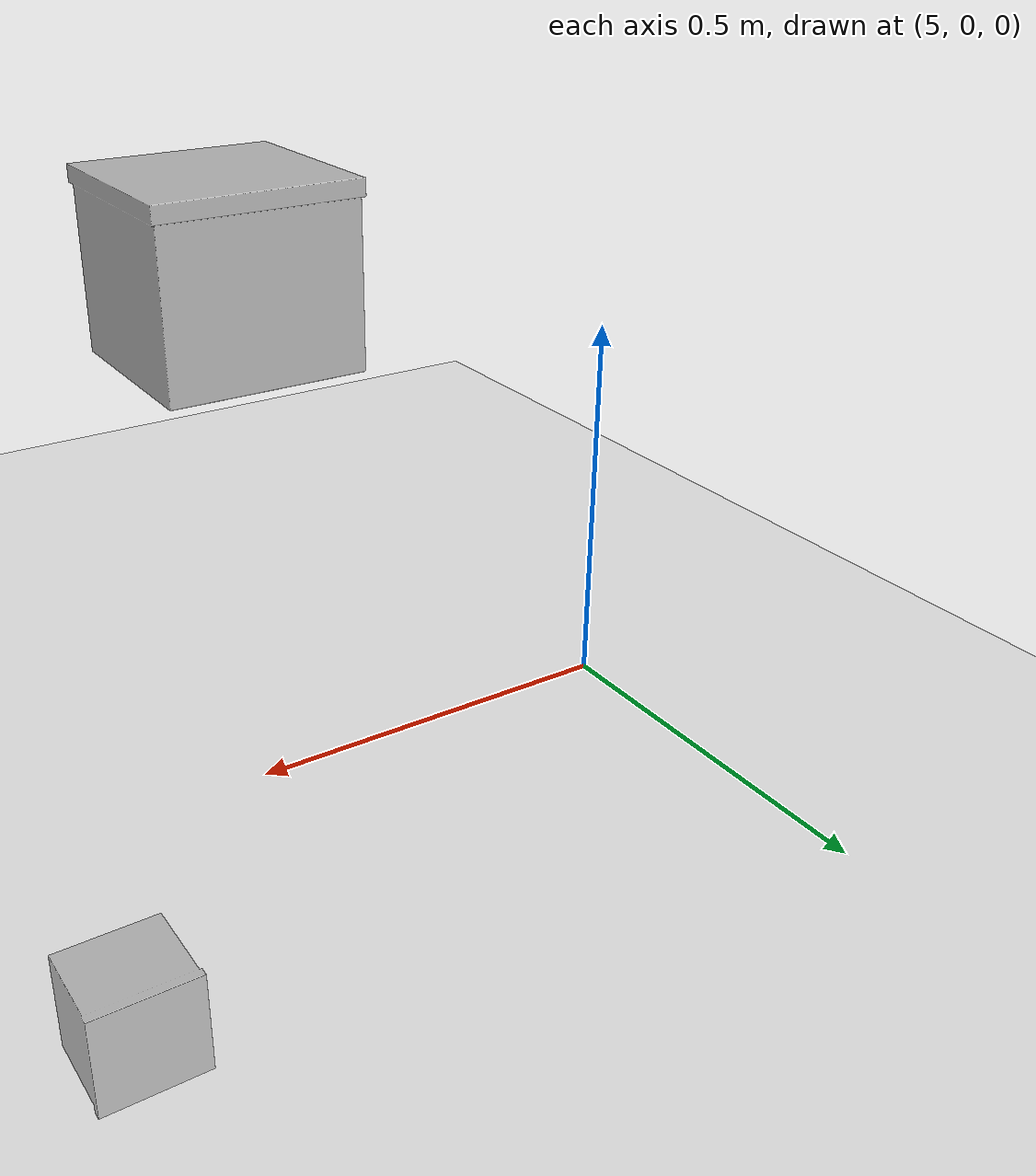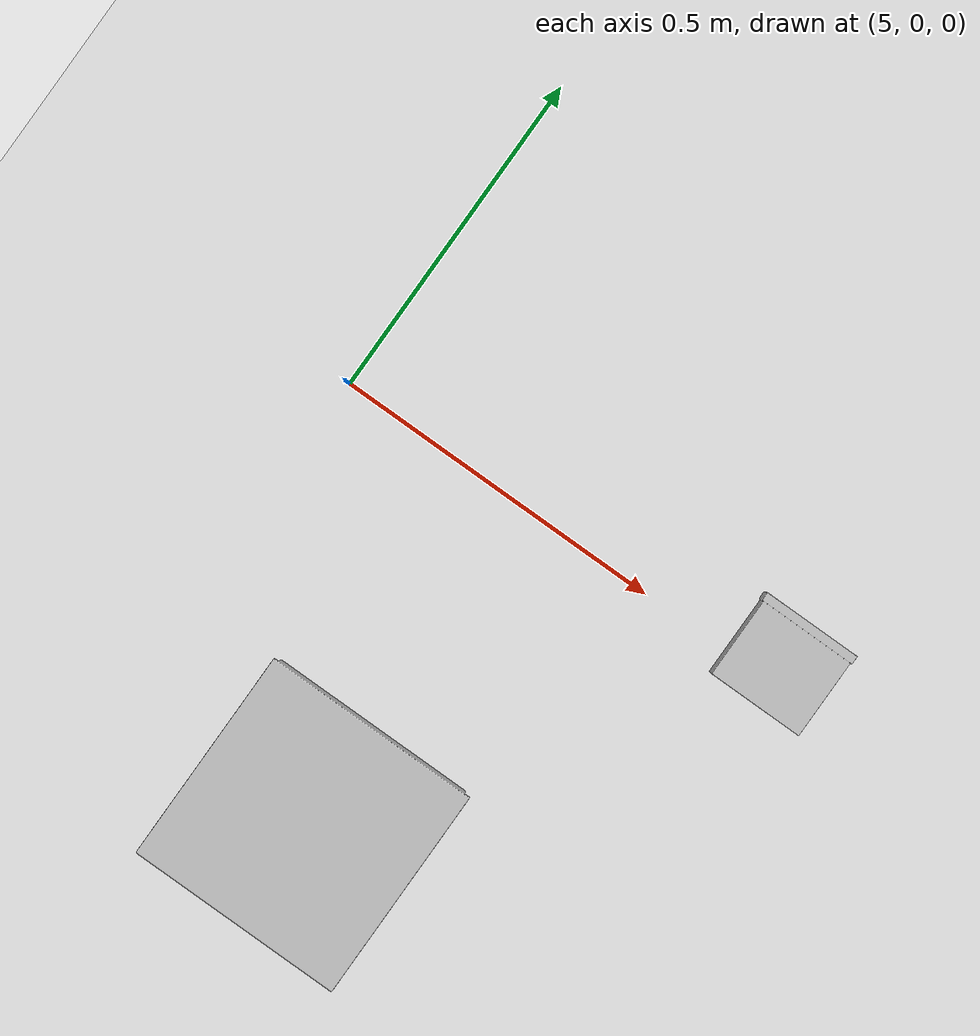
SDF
<?xml version="1.0"?>
<sdf version="1.6">
  <!-- We use a custom world for the rrbot so that the camera angle is launched correctly -->

  <world name="default">

    <plugin
      filename="gz-sim-physics-system"
      name="gz::sim::systems::Physics">
    </plugin>
    <plugin
      filename="gz-sim-air-pressure-system"
      name="gz::sim::systems::AirPressure">
    </plugin>
    <plugin
      filename="gz-sim-altimeter-system"
      name="gz::sim::systems::Altimeter">
    </plugin>
    <plugin
      filename="gz-sim-imu-system"
      name="gz::sim::systems::Imu">
    </plugin>
    <plugin
      filename="gz-sim-sensors-system"
      name="gz::sim::systems::Sensors">
      <render_engine>ogre2</render_engine>
    </plugin>
    <plugin
      filename="gz-sim-magnetometer-system"
      name="gz::sim::systems::Magnetometer">
    </plugin>
    <plugin
      filename="gz-sim-forcetorque-system"
      name="gz::sim::systems::ForceTorque">
    </plugin>
    <plugin
      filename="gz-sim-user-commands-system"
      name="gz::sim::systems::UserCommands">
    </plugin>
    <plugin
      filename="gz-sim-scene-broadcaster-system"
      name="gz::sim::systems::SceneBroadcaster">
    </plugin>
    <gravity>0 0 -9.81</gravity>

    <light type="directional" name="sun">
      <cast_shadows>true</cast_shadows>
      <pose>0 0 10 0 0 0</pose>
      <diffuse>0.8 0.8 0.8 1</diffuse>
      <specular>0.2 0.2 0.2 1</specular>
      <attenuation>
        <range>1000</range>
        <constant>0.9</constant>
        <linear>0.01</linear>
        <quadratic>0.001</quadratic>
      </attenuation>
      <direction>-0.5 0.1 -0.9</direction>
    </light>

    <model name="ground_plane">
      <static>true</static>
      <link name="link">
        <collision name="collision">
          <geometry>
            <plane>
              <normal>0 0 1</normal>
              <size>100 100</size>
            </plane>
          </geometry>
        </collision>
        <visual name="visual">
          <geometry>
            <plane>
              <normal>0 0 1</normal>
              <size>100 100</size>
            </plane>
          </geometry>
          <material>
            <ambient>0.8 0.8 0.8 1</ambient>
            <diffuse>0.8 0.8 0.8 1</diffuse>
            <specular>0.8 0.8 0.8 1</specular>
          </material>
        </visual>
      </link>
    </model>

    <model name="box_red_fp_001">
        <include>
            <uri>model://box_red_model_fp</uri>
        </include>
        <pose>5.3 -0.5 0.5 1.57 0.0 -1.57</pose>
    </model>

    <model name="pin_001">
        <include>
            <uri>model://pin_model</uri>
        </include>
        <!-- Default -->
        <pose>5.68 -0.04 -0.26 0.0 0.0 0.0</pose>
        <!-- Top view -->
    </model>

    <!-- Focus camera on tall pendulum -->
    <gui fullscreen='0'>
      <camera name='user_camera'>
        <pose>4.927360 -4.376610 3.740080 0.000000 0.275643 2.356190</pose>
        <view_controller>orbit</view_controller>
      </camera>
    </gui>

    <physics name="update_rate" type="ode">
      <real_time_update_rate>2000</real_time_update_rate>
      <max_step_size>0.0005</max_step_size>
      <max_contacts>10</max_contacts>
      <bullet>
        <solver>
          <iters>100</iters>
          <sor>1.55</sor>
        </solver>
        <constraints>
          <contact_surface_layer>0.2</contact_surface_layer>
          <cfm>0.005</cfm>
          <erp>0.2</erp>
        </constraints>
      </bullet>
      <ode>
        <solver>
          <iters>50</iters>
          <sor>1.20</sor>
        </solver>
        <constraints>
          <contact_surface_layer>0.0002</contact_surface_layer>
          <contact_max_correcting_vel>500</contact_max_correcting_vel>
          <cfm>0.000001</cfm>
          <erp>0.3</erp>
        </constraints>
      </ode>
    </physics>

  </world>
</sdf>

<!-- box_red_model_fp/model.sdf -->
<sdf version="1.6">
  <model name="box_red_model_fp">
    <static>false</static>

    <link name="link">
      <pose>0 0 0 0 0 0</pose>

      <!-- VISUAL (solo grafica) -->
      <visual name="visual">
      <pose>-0.075 -0.145 0.0 0 0 0</pose>
        <geometry>
          <mesh>
            <uri>model://box_red_model_fp/meshes/red_box.obj</uri>
          </mesh>
        </geometry>
      </visual>

      <!-- COLLISION (fisica reale) -->
      <collision name="collision">
        <geometry>
          <box>
            <size>0.3 0.3 0.3</size>
          </box>
        </geometry>

        <surface>
          <friction>
            <ode>
              <mu>10.0</mu>
              <mu2>10.0</mu2>
              <slip1>0.0</slip1>
              <slip2>0.0</slip2>
            </ode>
          </friction>

        </surface>

      </collision>

      <!-- Aggiungiamo massa e inerzia (importantissimo se static=false) -->
      <inertial>
        <mass>2</mass>
        <inertia>
          <ixx>10000</ixx>
          <iyy>10000</iyy>
          <izz>10000</izz>
          <ixy>0.0</ixy>
          <ixz>0.0</ixz>
          <iyz>0.0</iyz>
        </inertia>
      </inertial>

    </link>
  </model>
</sdf>

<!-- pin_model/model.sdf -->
<sdf version="1.6">
  <model name="box3_model">
    <static>true</static>

    <link name="link">
      <pose>0 0 0 0 0 0</pose>

      <!-- VISUAL (solo grafica) -->
      <visual name="visual">
        <geometry>
          <mesh>
            <uri>model://box3_model/meshes/colored_box.obj</uri>
            <scale>0.006 0.005 0.004</scale>
          </mesh>
        </geometry>
      </visual>

    </link>
  </model>
</sdf>
